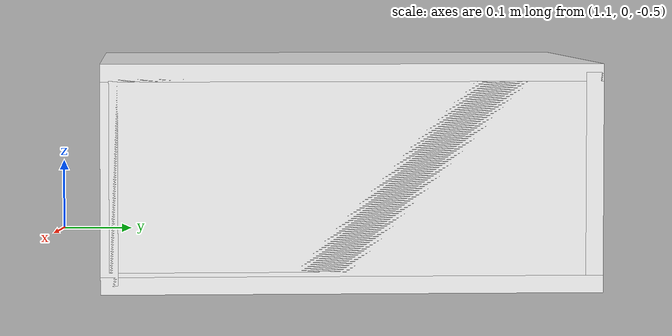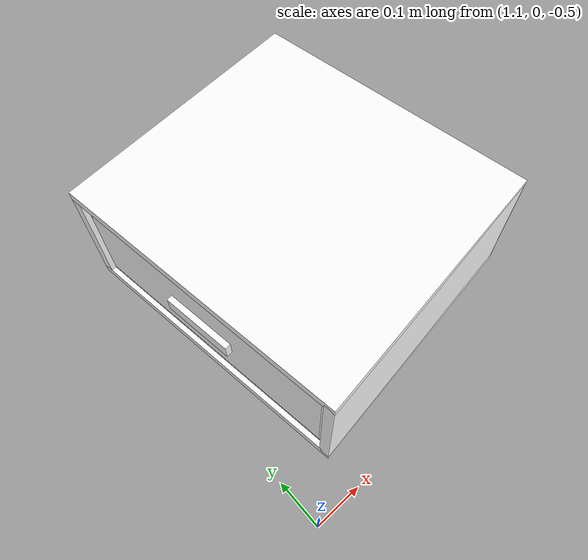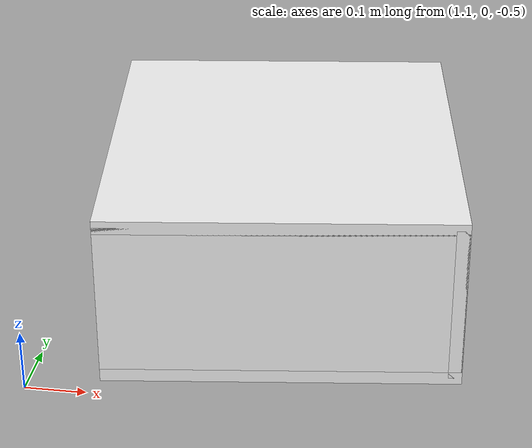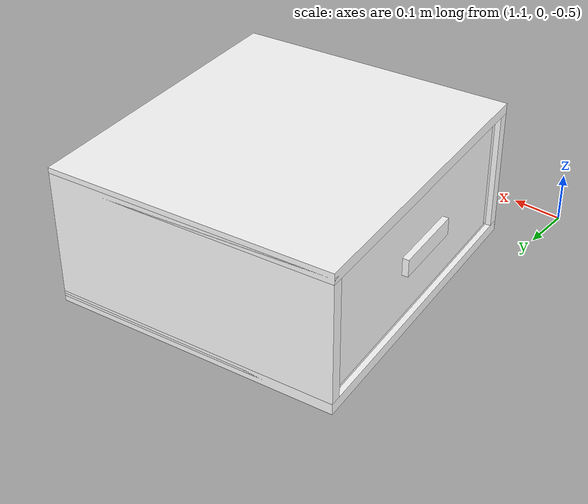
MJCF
<mujoco model="drawer">
        <compiler angle="radian" eulerseq='zxy' />
        <option gravity = "0 0 0" />
        <option>
            <flag contact = "disable"/>
        </option>
        <statistic	extent="1.0" center="0.0 0.0 0.0"/>
        <visual>
            <map fogstart="3" fogend="5" force="0.1" znear=" 0.100000 " zfar=" 12.000000 "/>
        </visual>
        <size njmax="500" nconmax="100" />
        <actuator>
            <velocity joint="drawerJ" name="viva_revolution" kv='10'></velocity>
        </actuator>
        <asset>
            <texture builtin="flat" name="objtex" height="32" width="32" rgb1="1 1 1" type="cube"></texture>
            <texture builtin="flat" name="handletex" height="32" width="32" rgb1="1 1 1" type="cube"></texture>
            <material name="geomObj" shininess="0.03" specular="0.75" texture="objtex"></material>
            <material name="geomHandle" shininess="0.03" specular="0.75" texture="handletex"></material>
        </asset>
        <worldbody>
            <body name="cabinet_bottom" pos= " 1.449032 0.434077 -0.518757 "  quat= " -0.064586 0.000000 0.000000 0.997912" >
                <inertial pos="0 0 0" mass="1" diaginertia="1 1 1" />
                <geom size= " 0.292338 0.320838 0.011197 "  type="box" material="geomObj" name="b"/>
                <body name="cabinet_left" pos= " 0.000000 -0.309641 0.135250 " >
                    <inertial pos="0 0 0" mass="1" diaginertia="1 1 1" />
                    <geom size= " 0.292338 0.011197 0.135250 "  type="box" material="geomObj" name="c" />
                </body>
                <body name="cabinet_right" pos= " 0.000000 0.309641 0.135250 " >
                    <inertial pos="0 0 0" mass="1" diaginertia="1 1 1" />
                    <geom size= " 0.292338 0.011197 0.135250 "  type="box" material="geomObj" name="d" />
                </body>
                <body name="cabinet_top" pos= " 0.000000 0.000000 0.270501 " >
                    <inertial pos="0 0 0" mass="1" diaginertia="1 1 1" />
                    <geom size= " 0.292338 0.320838 0.011197 "  type="box" material="geomObj" name="e"/>
                </body>
                <body name="cabinet_back" pos= " -0.281141 0.000000 0.135250 "  >
                    <inertial pos="0 0 0" mass="1" diaginertia="1 1 1" />
                    <geom size= " 0.011197 0.320838 0.135250 "  type="box" material="geomObj" name="f" />
                </body>
                <body name="drawer" pos= " 0.000000 0.000000 0.005599 "  >
                    <geom size= " 0.281141 0.309641 0.011197 "  type="box" material="geomObj" name="ddddfadfadsfac" />
                    <joint name="drawerJ" pos="0 0 0" axis="1 0 0" type="slide" limited="true" range= "0  0.43850742280483246 "  />
                    <inertial pos="0 0 0" mass="1" diaginertia="1 1 1" />
                    <body name="drawer_left" pos= " 0.000000 -0.298444 0.135250 " >
                        <inertial pos="0 0 0" mass="1" diaginertia="1 1 1" />
                        <geom size= " 0.281141 0.011197 0.124053 "  type="box" material="geomObj" name="ddc" />
                    </body>
                    <body name="drawer_right" pos= " 0.000000 0.298444 0.135250 " >
                        <inertial pos="0 0 0" mass="1" diaginertia="1 1 1" />
                        <geom size= " 0.281141 0.011197 0.124053 "  type="box" material="geomObj" name="dddd" />
                    </body>
                    <body name="drawer_front" pos= " 0.269944 0.000000 0.135250 " >
                        <inertial pos="0 0 0" mass="1" diaginertia="1 1 1" />
                        <geom size= " 0.011197 0.309641 0.124053 "  type="box" material="geomObj" name="eeeee"/>
                    </body>
                    <body name="drawer_back" pos= " -0.281141 0.000000 0.135250 "  >
                        <inertial pos="0 0 0" mass="1" diaginertia="1 1 1" />
                        <geom size= " 0.011197 0.309641 0.124053 "  type="box" material="geomObj" name="fffff" />
                    </body>
                    <body name="knob" pos= " 0.292338 0.000000 0.135250 " >
                        <inertial pos="0 0 0" mass="0.1" diaginertia="0.1 0.1 0.1" />
                        <geom size= " 0.006316 0.077194 0.018158 "  pos="0 0 0" type="box" material="geomHandle" name="handle"/>
                    </body>
                </body>
            </body>
            <body name="external_camera_body_0" pos="0.0 0 0.00">
                <camera euler="-1.57 1.57 0.0" fovy=" 54.280851 " name="external_camera_0" pos="0.0 0 0"></camera>
                <inertial pos= " 0.00 0.0 0.000000 " mass="1" diaginertia="1 1 1" />
                <joint name="cam_j" pos="0.0 0 0" axis = "1 0 0" type="free" />
            </body>
        </worldbody>
    </mujoco>
